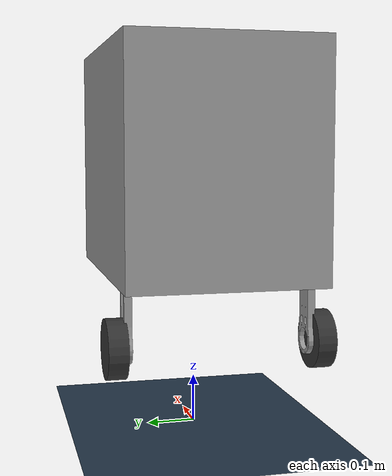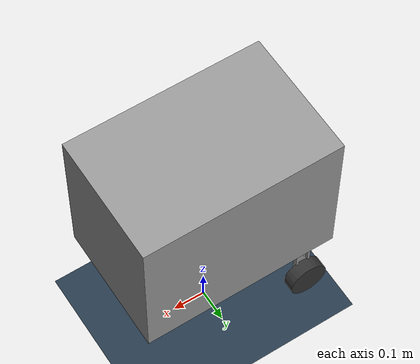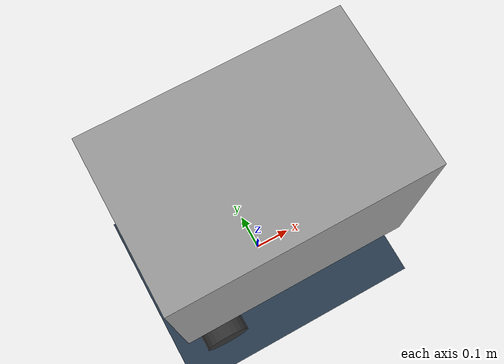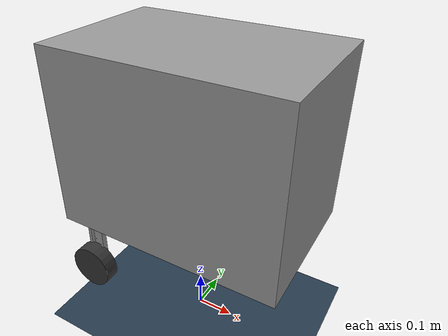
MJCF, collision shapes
<?xml version="1.0" ?>
<mujoco model="wheel_legged_v4">
  <compiler angle="radian" autolimits="true" balanceinertia="true" meshdir="/home/kristina/bachelor-design-projects/Wheel-Legged-Gym/resources/robots/wheel_legged_fyt/meshes"/>
  <option gravity="0 0 -9.81" integrator="Euler" timestep="0.005"/>
  <visual>
    <headlight active="1" ambient="0.35 0.35 0.35" diffuse="0.45 0.45 0.45" specular="0.1 0.1 0.1"/>
  </visual>
  <asset>
    <mesh file="base_link.STL" name="base_link"/>
    <mesh file="left_thigh_link.STL" name="left_thigh_link"/>
    <mesh file="left_leg_link.STL" name="left_leg_link"/>
    <mesh file="left_wheel_link.STL" name="left_wheel_link"/>
    <mesh file="right_thigh_link.STL" name="right_thigh_link"/>
    <mesh file="right_leg_link.STL" name="right_leg_link"/>
    <mesh file="right_wheel_link.STL" name="right_wheel_link"/>
    <texture builtin="checker" height="512" name="grid" rgb1="0.2 0.3 0.4" rgb2="0.1 0.15 0.2" type="2d" width="512"/>
    <material name="grid" reflectance="0.1" texrepeat="5 5" texture="grid"/>
  </asset>
  <worldbody>
    <geom friction="1.0 0.005 0.0001" material="grid" name="floor" size="0 0 0.05" type="plane"/>
    <body name="base_link" pos="0 0 0.35">
      <freejoint name="floating_base"/>
      <inertial fullinertia="0.251141 0.369127 0.294251 -0.007565 0.003735 0.009545" mass="16.524" pos="-0.019 -0.004 0.143"/>
      <geom conaffinity="0" contype="0" group="1" mesh="base_link" rgba="0.75 0.75 0.78 1" type="mesh"/>
      <geom group="0" pos="0 0 0.215" rgba="0.6 0.6 0.6 0" size="0.30 0.196 0.236" type="box"/>
      <light ambient="0.05 0.05 0.05" castshadow="true" cutoff="45" diffuse="0.9 0.9 0.85" dir="0 0 -1" directional="false" exponent="10" mode="track" name="base_top_spotlight" pos="0 0 1.5" specular="0.2 0.2 0.2"/>
      <body euler="-1.5707963267949 0 0" name="left_thigh_link" pos="0 0.162500000000001 0.115879159638825">
        <joint axis="0 0 1" limited="true" name="left_thigh_joint" pos="0 0 0" range="-3.14 3.14" type="hinge"/>
        <inertial fullinertia="0.000130 0.001597 0.001710 -0.000008 0.000003 0.000002" mass="0.3" pos="-0.101619 -0.003797 0.001285"/>
        <geom conaffinity="0" contype="0" group="1" mesh="left_thigh_link" rgba="0.75 0.75 0.78 1" type="mesh"/>
        <geom group="0" mesh="left_thigh_link" rgba="0.6 0.6 0.6 0.4" type="mesh"/>
        <body euler="0 0 0" name="left_leg_link" pos="-0.21 0.0 0.018">
          <joint axis="0 0 1" limited="true" name="left_leg_joint" pos="0 0 0" range="-1.2 0.7" type="hinge"/>
          <inertial fullinertia="0.002686 0.000075 0.002751 0.000065 0.000000 0.000006" mass="0.32" pos="0.001518 0.102070 -0.000358"/>
          <geom conaffinity="0" contype="0" group="1" mesh="left_leg_link" rgba="0.75 0.75 0.78 1" type="mesh"/>
          <geom group="0" mesh="left_leg_link" rgba="0.6 0.6 0.6 0.4" type="mesh"/>
          <body euler="0 0 0" name="left_wheel_link" pos="0.0 0.25 0.022043">
            <joint axis="0 0 1" limited="false" name="left_wheel_joint" pos="0 0 0" type="hinge"/>
            <inertial fullinertia="0.000283 0.000283 0.000537 0.00000 0.00000 0.000001" mass="0.350" pos="0.000 0.000 0.011"/>
            <geom conaffinity="0" contype="0" group="1" mesh="left_wheel_link" rgba="0.75 0.75 0.78 1" type="mesh"/>
            <geom friction="1.0 0.005 0.0001" rgba="0.2 0.2 0.2 1" size="0.0579 0.019" type="cylinder"/>
          </body>
        </body>
      </body>
      <body euler="1.5708 0 0" name="right_thigh_link" pos="0 -0.1625 0.11588">
        <joint axis="0 0 1" limited="true" name="right_thigh_joint" pos="0 0 0" range="-3.14 3.14" type="hinge"/>
        <inertial fullinertia="0.000130 0.001597 0.001710 0.000008 0.000003 -0.000002" mass="0.3" pos="-0.101619 0.003797 0.001285"/>
        <geom conaffinity="0" contype="0" group="1" mesh="right_thigh_link" rgba="0.75 0.75 0.78 1" type="mesh"/>
        <geom group="0" mesh="right_thigh_link" rgba="0.6 0.6 0.6 0.4" type="mesh"/>
        <body euler="0 0 0" name="right_leg_link" pos="-0.21 0.0 0.018">
          <joint axis="0 0 1" limited="true" name="right_leg_joint" pos="0 0 0" range="-0.7 1.2" type="hinge"/>
          <inertial fullinertia="0.002686 0.000075 0.00275 -0.000065 0.00000 -0.000006" mass="0.32" pos="0.001518 -0.102070 -0.00036"/>
          <geom conaffinity="0" contype="0" group="1" mesh="right_leg_link" rgba="0.75 0.75 0.78 1" type="mesh"/>
          <geom group="0" mesh="right_leg_link" rgba="0.6 0.6 0.6 0.4" type="mesh"/>
          <body euler="0 0 0" name="right_wheel_link" pos="0.0 -0.25 0.022043">
            <joint axis="0 0 1" limited="false" name="right_wheel_joint" pos="0 0 0" type="hinge"/>
            <inertial fullinertia="0.000283 0.000282 0.000537 0.000 -0.000001 0.000" mass="0.350" pos="-0.00026 0.000 0.0115"/>
            <geom conaffinity="0" contype="0" group="1" mesh="right_wheel_link" rgba="0.75 0.75 0.78 1" type="mesh"/>
            <geom friction="1.0 0.005 0.0001" rgba="0.2 0.2 0.2 1" size="0.0579 0.019" type="cylinder"/>
          </body>
        </body>
      </body>
    </body>
  </worldbody>
  <actuator>
    <motor ctrllimited="true" ctrlrange="-30.0 30.0" gear="1" joint="left_thigh_joint" name="left_thigh_joint"/>
    <motor ctrllimited="true" ctrlrange="-30.0 30.0" gear="1" joint="left_leg_joint" name="left_leg_joint"/>
    <motor ctrllimited="true" ctrlrange="-4.5 4.5" gear="1" joint="left_wheel_joint" name="left_wheel_joint"/>
    <motor ctrllimited="true" ctrlrange="-30.0 30.0" gear="1" joint="right_thigh_joint" name="right_thigh_joint"/>
    <motor ctrllimited="true" ctrlrange="-30.0 30.0" gear="1" joint="right_leg_joint" name="right_leg_joint"/>
    <motor ctrllimited="true" ctrlrange="-4.5 4.5" gear="1" joint="right_wheel_joint" name="right_wheel_joint"/>
  </actuator>
</mujoco>
